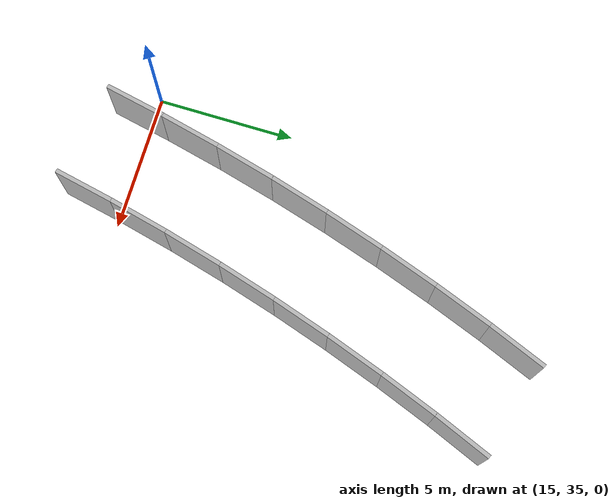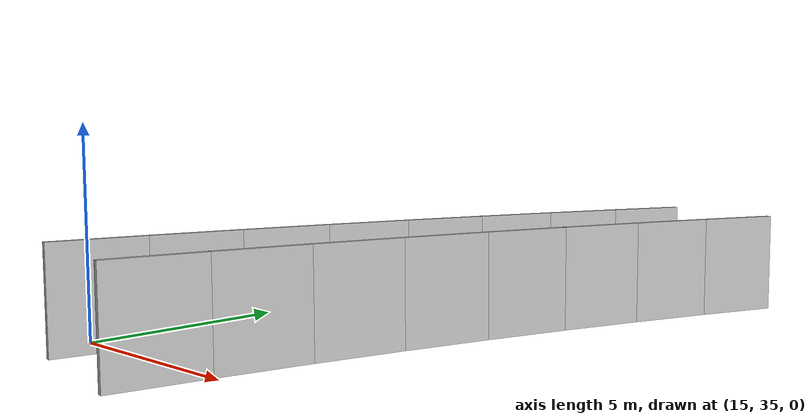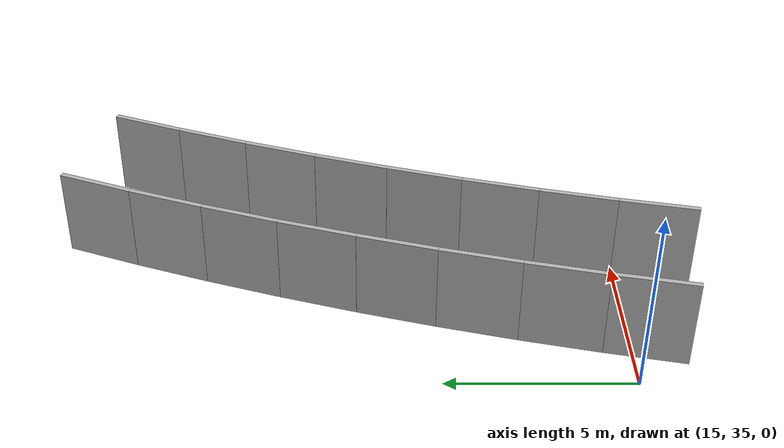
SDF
<?xml version="1.0" ?>
<sdf version="1.6">
  <model name="sps_1203">
    <pose frame="">0 0 0 0 -0 0</pose>
    <static>1</static>
    <self_collide>0</self_collide>
    <allow_auto_disable>0</allow_auto_disable>
    <link name="Wall1609">
      <kinematic>0</kinematic>
      <gravity>1</gravity>
      <self_collide>0</self_collide>
      <collision name="collision">
        <geometry>
          <box>
            <size>2.22088 0.15 2.5</size>
          </box>
        </geometry>
        <pose frame="">0 0 0 0 -0 0</pose>
      </collision>
      <visual name="visual">
        <geometry>
          <box>
            <size>2.22088 0.15 2.5</size>
          </box>
        </geometry>
        <pose frame="">0 0 0 0 -0 0</pose>
        <cast_shadows>1</cast_shadows>
        <transparency>0.0</transparency>
      </visual>
      <pose frame="">16.0845 34.6642 1.25 0 -0 1.36271</pose>
    </link>
    <link name="Wall1610">
      <kinematic>0</kinematic>
      <gravity>1</gravity>
      <self_collide>0</self_collide>
      <collision name="collision">
        <geometry>
          <box>
            <size>2.22097 0.15 2.5</size>
          </box>
        </geometry>
        <pose frame="">0 0 0 0 -0 0</pose>
      </collision>
      <visual name="visual">
        <geometry>
          <box>
            <size>2.22097 0.15 2.5</size>
          </box>
        </geometry>
        <pose frame="">0 0 0 0 -0 0</pose>
        <cast_shadows>1</cast_shadows>
        <transparency>0.0</transparency>
      </visual>
      <pose frame="">16.5705 36.8311 1.25 0 -0 1.33754</pose>
    </link>
    <link name="Wall1611">
      <kinematic>0</kinematic>
      <gravity>1</gravity>
      <self_collide>0</self_collide>
      <collision name="collision">
        <geometry>
          <box>
            <size>2.22085 0.15 2.5</size>
          </box>
        </geometry>
        <pose frame="">0 0 0 0 -0 0</pose>
      </collision>
      <visual name="visual">
        <geometry>
          <box>
            <size>2.22085 0.15 2.5</size>
          </box>
        </geometry>
        <pose frame="">0 0 0 0 -0 0</pose>
        <cast_shadows>1</cast_shadows>
        <transparency>0.0</transparency>
      </visual>
      <pose frame="">17.1113 38.985 1.25 0 -0 1.31214</pose>
    </link>
    <link name="Wall1612">
      <kinematic>0</kinematic>
      <gravity>1</gravity>
      <self_collide>0</self_collide>
      <collision name="collision">
        <geometry>
          <box>
            <size>2.22088 0.15 2.5</size>
          </box>
        </geometry>
        <pose frame="">0 0 0 0 -0 0</pose>
      </collision>
      <visual name="visual">
        <geometry>
          <box>
            <size>2.22088 0.15 2.5</size>
          </box>
        </geometry>
        <pose frame="">0 0 0 0 -0 0</pose>
        <cast_shadows>1</cast_shadows>
        <transparency>0.0</transparency>
      </visual>
      <pose frame="">17.7063 41.1245 1.25 0 -0 1.28695</pose>
    </link>
    <link name="Wall1613">
      <kinematic>0</kinematic>
      <gravity>1</gravity>
      <self_collide>0</self_collide>
      <collision name="collision">
        <geometry>
          <box>
            <size>2.22086 0.15 2.5</size>
          </box>
        </geometry>
        <pose frame="">0 0 0 0 -0 0</pose>
      </collision>
      <visual name="visual">
        <geometry>
          <box>
            <size>2.22086 0.15 2.5</size>
          </box>
        </geometry>
        <pose frame="">0 0 0 0 -0 0</pose>
        <cast_shadows>1</cast_shadows>
        <transparency>0.0</transparency>
      </visual>
      <pose frame="">18.355 43.2483 1.25 0 -0 1.26169</pose>
    </link>
    <link name="Wall1614">
      <kinematic>0</kinematic>
      <gravity>1</gravity>
      <self_collide>0</self_collide>
      <collision name="collision">
        <geometry>
          <box>
            <size>2.22095 0.15 2.5</size>
          </box>
        </geometry>
        <pose frame="">0 0 0 0 -0 0</pose>
      </collision>
      <visual name="visual">
        <geometry>
          <box>
            <size>2.22095 0.15 2.5</size>
          </box>
        </geometry>
        <pose frame="">0 0 0 0 -0 0</pose>
        <cast_shadows>1</cast_shadows>
        <transparency>0.0</transparency>
      </visual>
      <pose frame="">19.0572 45.3551 1.25 0 -0 1.23644</pose>
    </link>
    <link name="Wall1615">
      <kinematic>0</kinematic>
      <gravity>1</gravity>
      <self_collide>0</self_collide>
      <collision name="collision">
        <geometry>
          <box>
            <size>2.22105 0.15 2.5</size>
          </box>
        </geometry>
        <pose frame="">0 0 0 0 -0 0</pose>
      </collision>
      <visual name="visual">
        <geometry>
          <box>
            <size>2.22105 0.15 2.5</size>
          </box>
        </geometry>
        <pose frame="">0 0 0 0 -0 0</pose>
        <cast_shadows>1</cast_shadows>
        <transparency>0.0</transparency>
      </visual>
      <pose frame="">19.8124 47.4436 1.25 0 -0 1.21127</pose>
    </link>
    <link name="Wall1616">
      <kinematic>0</kinematic>
      <gravity>1</gravity>
      <self_collide>0</self_collide>
      <collision name="collision">
        <geometry>
          <box>
            <size>2.22085 0.15 2.5</size>
          </box>
        </geometry>
        <pose frame="">0 0 0 0 -0 0</pose>
      </collision>
      <visual name="visual">
        <geometry>
          <box>
            <size>2.22085 0.15 2.5</size>
          </box>
        </geometry>
        <pose frame="">0 0 0 0 -0 0</pose>
        <cast_shadows>1</cast_shadows>
        <transparency>0.0</transparency>
      </visual>
      <pose frame="">20.62 49.5123 1.25 0 -0 1.18595</pose>
    </link>
    <link name="Wall1775">
      <kinematic>0</kinematic>
      <gravity>1</gravity>
      <self_collide>0</self_collide>
      <collision name="collision">
        <geometry>
          <box>
            <size>2.18183 0.15 2.5</size>
          </box>
        </geometry>
        <pose frame="">0 0 0 0 -0 0</pose>
      </collision>
      <visual name="visual">
        <geometry>
          <box>
            <size>2.18183 0.15 2.5</size>
          </box>
        </geometry>
        <pose frame="">0 0 0 0 -0 0</pose>
        <cast_shadows>1</cast_shadows>
        <transparency>0.0</transparency>
      </visual>
      <pose frame="">24.0042 48.5418 1.25 0 0 -1.96005</pose>
    </link>
    <link name="Wall1776">
      <kinematic>0</kinematic>
      <gravity>1</gravity>
      <self_collide>0</self_collide>
      <collision name="collision">
        <geometry>
          <box>
            <size>2.18203 0.15 2.5</size>
          </box>
        </geometry>
        <pose frame="">0 0 0 0 -0 0</pose>
      </collision>
      <visual name="visual">
        <geometry>
          <box>
            <size>2.18203 0.15 2.5</size>
          </box>
        </geometry>
        <pose frame="">0 0 0 0 -0 0</pose>
        <cast_shadows>1</cast_shadows>
        <transparency>0.0</transparency>
      </visual>
      <pose frame="">23.2025 46.5127 1.25 0 0 -1.93409</pose>
    </link>
    <link name="Wall1777">
      <kinematic>0</kinematic>
      <gravity>1</gravity>
      <self_collide>0</self_collide>
      <collision name="collision">
        <geometry>
          <box>
            <size>2.1819 0.15 2.5</size>
          </box>
        </geometry>
        <pose frame="">0 0 0 0 -0 0</pose>
      </collision>
      <visual name="visual">
        <geometry>
          <box>
            <size>2.1819 0.15 2.5</size>
          </box>
        </geometry>
        <pose frame="">0 0 0 0 -0 0</pose>
        <cast_shadows>1</cast_shadows>
        <transparency>0.0</transparency>
      </visual>
      <pose frame="">22.4535 44.4635 1.25 0 0 -1.90835</pose>
    </link>
    <link name="Wall1778">
      <kinematic>0</kinematic>
      <gravity>1</gravity>
      <self_collide>0</self_collide>
      <collision name="collision">
        <geometry>
          <box>
            <size>2.18199 0.15 2.5</size>
          </box>
        </geometry>
        <pose frame="">0 0 0 0 -0 0</pose>
      </collision>
      <visual name="visual">
        <geometry>
          <box>
            <size>2.18199 0.15 2.5</size>
          </box>
        </geometry>
        <pose frame="">0 0 0 0 -0 0</pose>
        <cast_shadows>1</cast_shadows>
        <transparency>0.0</transparency>
      </visual>
      <pose frame="">21.7576 42.3957 1.25 0 0 -1.8826</pose>
    </link>
    <link name="Wall1779">
      <kinematic>0</kinematic>
      <gravity>1</gravity>
      <self_collide>0</self_collide>
      <collision name="collision">
        <geometry>
          <box>
            <size>2.18198 0.15 2.5</size>
          </box>
        </geometry>
        <pose frame="">0 0 0 0 -0 0</pose>
      </collision>
      <visual name="visual">
        <geometry>
          <box>
            <size>2.18198 0.15 2.5</size>
          </box>
        </geometry>
        <pose frame="">0 0 0 0 -0 0</pose>
        <cast_shadows>1</cast_shadows>
        <transparency>0.0</transparency>
      </visual>
      <pose frame="">21.1153 40.3106 1.25 0 0 -1.85663</pose>
    </link>
    <link name="Wall1780">
      <kinematic>0</kinematic>
      <gravity>1</gravity>
      <self_collide>0</self_collide>
      <collision name="collision">
        <geometry>
          <box>
            <size>2.1818 0.15 2.5</size>
          </box>
        </geometry>
        <pose frame="">0 0 0 0 -0 0</pose>
      </collision>
      <visual name="visual">
        <geometry>
          <box>
            <size>2.1818 0.15 2.5</size>
          </box>
        </geometry>
        <pose frame="">0 0 0 0 -0 0</pose>
        <cast_shadows>1</cast_shadows>
        <transparency>0.0</transparency>
      </visual>
      <pose frame="">20.5271 38.2097 1.25 0 0 -1.83092</pose>
    </link>
    <link name="Wall1781">
      <kinematic>0</kinematic>
      <gravity>1</gravity>
      <self_collide>0</self_collide>
      <collision name="collision">
        <geometry>
          <box>
            <size>2.18195 0.15 2.5</size>
          </box>
        </geometry>
        <pose frame="">0 0 0 0 -0 0</pose>
      </collision>
      <visual name="visual">
        <geometry>
          <box>
            <size>2.18195 0.15 2.5</size>
          </box>
        </geometry>
        <pose frame="">0 0 0 0 -0 0</pose>
        <cast_shadows>1</cast_shadows>
        <transparency>0.0</transparency>
      </visual>
      <pose frame="">19.9933 36.0943 1.25 0 0 -1.80502</pose>
    </link>
    <link name="Wall1782">
      <kinematic>0</kinematic>
      <gravity>1</gravity>
      <self_collide>0</self_collide>
      <collision name="collision">
        <geometry>
          <box>
            <size>2.18199 0.15 2.5</size>
          </box>
        </geometry>
        <pose frame="">0 0 0 0 -0 0</pose>
      </collision>
      <visual name="visual">
        <geometry>
          <box>
            <size>2.18199 0.15 2.5</size>
          </box>
        </geometry>
        <pose frame="">0 0 0 0 -0 0</pose>
        <cast_shadows>1</cast_shadows>
        <transparency>0.0</transparency>
      </visual>
      <pose frame="">19.5145 33.9657 1.25 0 0 -1.7791</pose>
    </link>
  </model>
</sdf>
